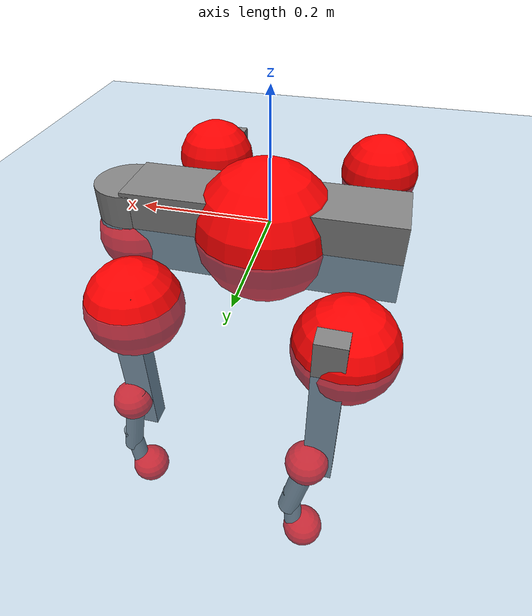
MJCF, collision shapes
<mujoco model="go2">
  <compiler angle="radian" assetdir="assets" balanceinertia="true" inertiafromgeom="false"/>

  <option timestep="0.005" density="1.2" viscosity="2e-05"/>

  <size nkey="1"/>

  <visual>
    <quality shadowsize="8192"/>
    <map shadowclip="0.5"/>
  </visual>

  <default>
    <default class="/">
      <geom contype="0" conaffinity="0" group="1" solref="-1000 -80"/>
      <site size="0.01 0.005 0.005" group="5"/>
      <general forcelimited="true" biastype="affine" gainprm="20" biasprm="0 -20 -0.5"/>
      <default class="go2">
        <joint armature="0.01" damping="0.01" frictionloss="0.2"/>
        <geom condim="1" margin="0.001"/>
        <default class="visual">
          <geom type="mesh" group="2"/>
        </default>
        <default class="collision">
          <geom group="3"/>
          <default class="foot">
            <geom size="0.022 0 0" condim="6" priority="1" friction="0.8 0.02 0.01" solimp="0.015 1 0.022"/>
          </default>
        </default>
        <default class="reward_collision_sphere">
          <geom group="5" rgba="1 0 0 1"/>
        </default>
      </default>
    </default>
  </default>

  <asset>
    <texture type="skybox" colorspace="auto" name="//unnamed_texture_0" builtin="gradient" rgb1="0.95 0.95 0.95" rgb2="0.95 0.95 0.95" width="100" height="600"/>
    <texture type="2d" colorspace="auto" name="texplane" builtin="checker" rgb1="0.345 0.575 0.748" rgb2="0.345 0.575 0.748" markrgb="1 1 1" width="512" height="512"/>
    <material name="MatPlane" class="/" texture="texplane" texuniform="true" texrepeat="2 2" specular="0.9"/>
    <material name="metal" class="/" rgba="0.9 0.95 0.95 1"/>
    <material name="black" class="/" rgba="0 0 0 1"/>
    <material name="white" class="/"/>
    <material name="gray" class="/" rgba="0.671705 0.692426 0.77427 1"/>
    <mesh name="base_0" class="/" file="base_0.obj"/>
    <mesh name="base_1" class="/" file="base_1.obj"/>
    <mesh name="base_2" class="/" file="base_2.obj"/>
    <mesh name="base_3" class="/" file="base_3.obj"/>
    <mesh name="base_4" class="/" file="base_4.obj"/>
    <mesh name="hip_0" class="/" file="hip_0.obj"/>
    <mesh name="hip_1" class="/" file="hip_1.obj"/>
    <mesh name="thigh_0" class="/" file="thigh_0.obj"/>
    <mesh name="thigh_1" class="/" file="thigh_1.obj"/>
    <mesh name="thigh_mirror_0" class="/" file="thigh_mirror_0.obj"/>
    <mesh name="thigh_mirror_1" class="/" file="thigh_mirror_1.obj"/>
    <mesh name="calf_0" class="/" file="calf_0.obj"/>
    <mesh name="calf_1" class="/" file="calf_1.obj"/>
    <mesh name="calf_mirror_0" class="/" file="calf_mirror_0.obj"/>
    <mesh name="calf_mirror_1" class="/" file="calf_mirror_1.obj"/>
    <mesh name="foot" class="/" file="foot.obj"/>
  </asset>

  <worldbody>
    <geom name="floor" class="/" size="100 100 0.125" type="plane" group="0" material="MatPlane"/>
    <light name="toplight_shadow" class="/" pos="0 0 5" dir="0.0990148 0.0990148 -0.990148" type="directional" ambient="0.04 0.04 0.04" diffuse="0.55 0.55 0.55" specular="0.12 0.12 0.12"/>
    <light name="toplight_fill" class="/" pos="0 0 5" dir="0.0990148 0.0990148 -0.990148" type="directional" castshadow="false" ambient="0.04 0.04 0.04" diffuse="0.3 0.3 0.3" specular="0.08 0.08 0.08"/>
    <body name="trunk" childclass="go2" pos="0.00239323 0.0149007 -0.00520709" quat="1 0.000217401 0.000171701 -5.34985e-05">
      <inertial pos="0.00653941 0.0156546 0.00023497" quat="0.0414433 0.668948 -0.0678712 0.739043" mass="8.53956" diaginertia="0.0236424 2.11089 0.00434745"/>
      <joint name="//unnamed_joint_0" type="free" armature="0" damping="0" frictionloss="0"/>
      <geom name="//unnamed_geom_1" class="visual" material="black" mesh="base_0"/>
      <geom name="//unnamed_geom_2" class="visual" material="black" mesh="base_1"/>
      <geom name="//unnamed_geom_3" class="visual" material="black" mesh="base_2"/>
      <geom name="//unnamed_geom_4" class="visual" material="white" mesh="base_3"/>
      <geom name="//unnamed_geom_5" class="visual" material="gray" mesh="base_4"/>
      <geom name="trunk_1" class="collision" size="0.201439 0.0500651 0.061042" type="box"/>
      <geom name="trunk_2" class="collision" size="0.0535456 0.048191" pos="0.206099 0 0.00709937" type="cylinder"/>
      <geom name="trunk_3" class="collision" size="0.0503329" pos="0.211885 0 -0.0425962"/>
      <geom name="//unnamed_geom_9" class="reward_collision_sphere" size="0.107091"/>
      <geom name="//unnamed_geom_10" class="reward_collision_sphere" size="0.0642547" pos="0.202484 0 -0.0319472"/>
      <site name="imu" pos="-0.0913082 -0.0608745 0.104467" size="0.0107091"/>
      <camera name="track" pos="0 -3.55929 0" quat="0.707107 0.707107 0 0" mode="trackcom"/>
      <camera name="ego_camera" pos="0.225625 0 0.0319472" quat="-0.5 -0.5 0.5 0.5"/>
      <body name="FL_hip" pos="0.126523 0.063632 -0.0168397" quat="0.999971 -0.00066829 0.00762426 -0.000531593">
        <inertial pos="0.00244189 0.0047094 -0.0114267" quat="0.486801 0.520483 0.507695 0.484116" mass="1.03156" diaginertia="0.000169256 0.0115309 8.18546e-05"/>
        <joint name="FL_hip_joint" pos="0 0 0" axis="0.999999 -0.00141729 -0.000728076" range="-1.436 0.812614" armature="0.013794" damping="0.0841028" frictionloss="0.0698842"/>
        <geom name="//unnamed_geom_11" class="visual" material="metal" mesh="hip_0"/>
        <geom name="//unnamed_geom_12" class="visual" material="gray" mesh="hip_1"/>
        <geom name="//unnamed_geom_13" class="collision" size="0.049262 0.0214182" pos="0 0.142371 0" quat="0.707107 0.707107 0 0" type="cylinder"/>
        <geom name="//unnamed_geom_14" class="reward_collision_sphere" size="0.0642547" pos="0 0.124575 0"/>
        <body name="FL_thigh" pos="-0.00258 0.150745 0.00714203" quat="0.999976 0.00537425 -0.00102323 -0.00434491">
          <inertial pos="-0.01667 -0.0523202 -0.0295876" quat="0.85958 0.0972138 -0.0707918 0.496649" mass="1.40756" diaginertia="0.00103796 0.0966351 0.000166261"/>
          <joint name="FL_thigh_joint" pos="0 0 0" axis="0.0735976 0.997129 -0.017824" range="-1.79163 3.13974" armature="0.0023621" damping="0" frictionloss="0.110074"/>
          <geom name="//unnamed_geom_15" class="visual" material="metal" mesh="thigh_0"/>
          <geom name="//unnamed_geom_16" class="visual" material="gray" mesh="thigh_1"/>
          <geom name="//unnamed_geom_17" class="collision" size="0.114052 0.0131187 0.0182055" pos="0 0 -0.0756083" quat="0.707107 0 0.707107 0" type="box"/>
          <body name="FL_calf" pos="0.00896358 0.0173906 -0.141501" quat="0.999983 -0.00397222 0.00398132 0.00165754">
            <inertial pos="-0.0086447 -0.00199582 -0.0817025" quat="0.710195 0.0040002 -0.0159376 0.703813" mass="0.308307" diaginertia="0.000337944 0.0196421 1.14033e-05"/>
            <joint name="FL_calf_joint" pos="0 0 0" axis="0.0119398 0.999868 -0.0110056" range="-2.35376 -0.895076" armature="0.0172033" damping="0.0249699" frictionloss="0.233158"/>
            <geom name="//unnamed_geom_18" class="visual" material="gray" mesh="calf_0"/>
            <geom name="//unnamed_geom_19" class="visual" material="black" mesh="calf_1"/>
            <geom name="FL_calf0" class="collision" size="0.0128509 0.0642547" pos="0.00578525 0 -0.0425962" quat="0.994493 0 -0.104807 0" type="cylinder"/>
            <geom name="//unnamed_geom_21" class="collision" size="0.01178 0.0348046" pos="0.0144631 0 -0.105071" quat="0.999688 0 0.0249974 0" type="cylinder"/>
            <geom name="//unnamed_geom_22" class="visual" pos="0 0 -0.151217" quat="1 0 0 0" material="black" mesh="foot"/>
            <geom name="FL_foot" class="foot" size="0.0253567" pos="-0.00144631 0 -0.151217"/>
            <geom name="//unnamed_geom_24" class="reward_collision_sphere" size="0.0267728"/>
            <geom name="//unnamed_geom_25" class="reward_collision_sphere" size="0.0267728" pos="-0.00144631 0 -0.151217"/>
            <site name="FL_foot" class="foot" pos="-0.00144631 0 -0.151217" size="0.0107091"/>
          </body>
        </body>
      </body>
      <body name="FR_hip" pos="0.136927 -0.0716919 0.0103481" quat="1 6.9615e-05 7.84488e-05 -0.000123228">
        <inertial pos="0.00567797 -0.0110148 -0.00781628" quat="0.486879 0.524214 0.496517 0.491548" mass="0.940096" diaginertia="0.000181727 0.012397 6.56021e-05"/>
        <joint name="FR_hip_joint" pos="0 0 0" axis="0.997799 0.0598841 -0.0284963" stiffness="0.0464012" range="-1.00061 1.12374" armature="0.00658306" damping="0" frictionloss="0.113497"/>
        <geom name="//unnamed_geom_26" class="visual" pos="0 9.31883e-09 3.99704e-07" quat="4.63268e-05 1 0 0" material="metal" mesh="hip_0"/>
        <geom name="//unnamed_geom_27" class="visual" pos="0 1.51069e-08 -9.88621e-07" quat="4.63268e-05 1 0 0" material="gray" mesh="hip_1"/>
        <geom name="//unnamed_geom_28" class="collision" size="0.049262 0.0214182" pos="0 -0.142371 0" quat="0.707107 0.707107 0 0" type="cylinder"/>
        <geom name="//unnamed_geom_29" class="reward_collision_sphere" size="0.0642547" pos="0 -0.124575 0"/>
        <body name="FR_thigh" pos="-0.0173765 -0.188887 -0.0122426" quat="0.999984 -0.00278683 -0.00285407 -0.00396716">
          <inertial pos="0.00857995 0.0586656 -0.0186362" quat="0.567207 -0.05054 0.0324847 0.821381" mass="0.937984" diaginertia="0.000886351 0.0838785 0.000143078"/>
          <joint name="FR_thigh_joint" pos="0 0 0" axis="0.000469721 -1 0.000293242" stiffness="0.0478666" range="-3.13586 1.60744" armature="0.00781634" damping="0" frictionloss="0.20958"/>
          <geom name="//unnamed_geom_30" class="visual" material="metal" mesh="thigh_mirror_0"/>
          <geom name="//unnamed_geom_31" class="visual" material="gray" mesh="thigh_mirror_1"/>
          <geom name="//unnamed_geom_32" class="collision" size="0.114052 0.0131187 0.0182055" pos="0 0 -0.0756083" quat="0.707107 0 0.707107 0" type="box"/>
          <body name="FR_calf" pos="0.01795 -0.00476471 -0.138501" quat="0.999967 0.00102357 0.003657 -0.00718305">
            <inertial pos="-0.00518116 -0.000916646 -0.11409" quat="0.68004 0.0458694 0.0251818 0.731305" mass="0.274444" diaginertia="0.000264045 0.0252038 8.4213e-06"/>
            <joint name="FR_calf_joint" pos="0 0 0" axis="-0.0370355 -0.995573 -0.0863819" stiffness="0.0516714" range="0.711354 2.67219" armature="0.00210665" damping="0" frictionloss="0.386733"/>
            <geom name="//unnamed_geom_33" class="visual" material="gray" mesh="calf_mirror_0"/>
            <geom name="//unnamed_geom_34" class="visual" material="black" mesh="calf_mirror_1"/>
            <geom name="FR_calf0" class="collision" size="0.0139219 0.0642547" pos="0.00723156 0 -0.0425962" quat="0.995004 0 -0.0998334 0" type="cylinder"/>
            <geom name="//unnamed_geom_36" class="collision" size="0.01178 0.0348046" pos="0.0144631 0 -0.105071" quat="0.999688 0 0.0249974 0" type="cylinder"/>
            <geom name="//unnamed_geom_37" class="visual" pos="0 0 -0.151217" quat="1 0 0 0" material="black" mesh="foot"/>
            <geom name="FR_foot" class="foot" size="0.0316843" pos="-0.00144631 0 -0.151217"/>
            <geom name="//unnamed_geom_39" class="reward_collision_sphere" size="0.0267728"/>
            <geom name="//unnamed_geom_40" class="reward_collision_sphere" size="0.0267728" pos="-0.00144631 0 -0.151217"/>
            <site name="FR_foot" class="foot" pos="-0.00144631 0 -0.151217" size="0.0107091"/>
          </body>
        </body>
      </body>
      <body name="RL_hip" pos="-0.145274 0.0887458 -0.00506967" quat="0.999989 0.0009269 -0.00423501 -0.0016931">
        <inertial pos="0.00127332 0.0190689 -0.0119674" quat="0.498179 0.493276 0.531516 0.475381" mass="0.646939" diaginertia="0.000148355 0.00930958 7.78151e-05"/>
        <joint name="RL_hip_joint" pos="0 0 0" axis="-0.99915 -0.0400644 -0.00970854" stiffness="0.0396608" range="-1.20019 1.25202" armature="0.00906868" damping="0" frictionloss="0.138399"/>
        <geom name="//unnamed_geom_41" class="visual" pos="-1.15153e-10 0 -2.25725e-08" quat="4.63268e-05 0 1 0" material="metal" mesh="hip_0"/>
        <geom name="//unnamed_geom_42" class="visual" pos="-1.86676e-10 0 -2.00186e-08" quat="4.63268e-05 0 1 0" material="gray" mesh="hip_1"/>
        <geom name="//unnamed_geom_43" class="collision" size="0.049262 0.0214182" pos="0 0.142371 0" quat="0.707107 0.707107 0 0" type="cylinder"/>
        <geom name="//unnamed_geom_44" class="reward_collision_sphere" size="0.0642547" pos="0 0.124575 0"/>
        <body name="RL_thigh" pos="0.0128413 0.170576 0.0177893" quat="0.999993 0.00118352 0.00275595 -0.00219322">
          <inertial pos="-0.00503535 -0.0343965 -0.00528496" quat="0.862206 0.071042 -0.0205588 0.501129" mass="0.942724" diaginertia="0.00113934 0.0797883 0.000148324"/>
          <joint name="RL_thigh_joint" pos="0 0 0" axis="-0.00751013 0.999958 -0.00518687" stiffness="0.023439" range="-0.226993 4.28089" armature="0.0154931" damping="0.0896288" frictionloss="0.27097"/>
          <geom name="//unnamed_geom_45" class="visual" material="metal" mesh="thigh_0"/>
          <geom name="//unnamed_geom_46" class="visual" material="gray" mesh="thigh_1"/>
          <geom name="//unnamed_geom_47" class="collision" size="0.114052 0.0131187 0.0182055" pos="0 0 -0.0756083" quat="0.707107 0 0.707107 0" type="box"/>
          <body name="RL_calf" pos="0.0124912 0.0192085 -0.157956" quat="0.999992 0.00266873 0.00281637 -0.000516359">
            <inertial pos="0.00972945 -0.00338454 -0.0942646" quat="0.707966 -0.0193591 0.00146591 0.70598" mass="0.209939" diaginertia="0.00019737 0.0232296 7.90738e-06"/>
            <joint name="RL_calf_joint" pos="0 0 0" axis="-0.0180863 0.997715 -0.0650916" range="-3.09888 -0.544194" armature="0.00902044" damping="0.0593854" frictionloss="0.24934"/>
            <geom name="//unnamed_geom_48" class="visual" material="gray" mesh="calf_0"/>
            <geom name="//unnamed_geom_49" class="visual" material="black" mesh="calf_1"/>
            <geom name="RL_calf0" class="collision" size="0.0139219 0.0642547" pos="0.00723156 0 -0.0425962" quat="0.995004 0 -0.0998334 0" type="cylinder"/>
            <geom name="//unnamed_geom_51" class="collision" size="0.01178 0.0348046" pos="0.0144631 0 -0.105071" quat="0.999688 0 0.0249974 0" type="cylinder"/>
            <geom name="//unnamed_geom_52" class="visual" pos="0 0 -0.151217" quat="1 0 0 0" material="black" mesh="foot"/>
            <geom name="RL_foot" class="foot" size="0.0149229" pos="-0.00144631 0 -0.151217"/>
            <geom name="//unnamed_geom_54" class="reward_collision_sphere" size="0.0267728"/>
            <geom name="//unnamed_geom_55" class="reward_collision_sphere" size="0.0267728" pos="-0.00144631 0 -0.151217"/>
            <site name="RL_foot" class="foot" pos="-0.00144631 0 -0.151217" size="0.0107091"/>
          </body>
        </body>
      </body>
      <body name="RR_hip" pos="-0.148778 -0.0768756 0.00818531" quat="0.999967 -0.00612776 0.00387685 -0.00361848">
        <inertial pos="-0.00431023 -0.0194906 0.0132212" quat="0.472394 0.512659 0.519733 0.493865" mass="0.668102" diaginertia="0.000121039 0.00791458 5.736e-05"/>
        <joint name="RR_hip_joint" pos="0 0 0" axis="-0.996569 0.0827539 -0.00145303" range="-0.928758 1.39388" armature="0.0115465" damping="0.0517587" frictionloss="0.154862"/>
        <geom name="//unnamed_geom_56" class="visual" pos="1.51729e-10 9.31883e-09 -4.22276e-07" quat="2.14617e-09 4.63268e-05 4.63268e-05 -1" material="metal" mesh="hip_0"/>
        <geom name="//unnamed_geom_57" class="visual" pos="9.62085e-11 1.51069e-08 9.68602e-07" quat="2.14617e-09 4.63268e-05 4.63268e-05 -1" material="gray" mesh="hip_1"/>
        <geom name="//unnamed_geom_58" class="collision" size="0.049262 0.0214182" pos="0 -0.142371 0" quat="0.707107 0.707107 0 0" type="cylinder"/>
        <geom name="//unnamed_geom_59" class="reward_collision_sphere" size="0.0642547" pos="0 -0.124575 0"/>
        <body name="RR_thigh" pos="-0.002959 -0.183893 -0.0100372" quat="0.999964 0.000192584 0.000596885 0.00842818">
          <inertial pos="-0.00403946 0.0567568 -0.0357022" quat="0.536096 -0.0520546 0.0929298 0.83741" mass="1.54955" diaginertia="0.00127441 0.114835 0.000182323"/>
          <joint name="RR_thigh_joint" pos="0 0 0" axis="-0.0749676 -0.996123 -0.0460365" stiffness="0.04828" range="-4.66967 0.282651" armature="0.0127899" damping="0" frictionloss="0.140934"/>
          <geom name="//unnamed_geom_60" class="visual" material="metal" mesh="thigh_mirror_0"/>
          <geom name="//unnamed_geom_61" class="visual" material="gray" mesh="thigh_mirror_1"/>
          <geom name="//unnamed_geom_62" class="collision" size="0.114052 0.0131187 0.0182055" pos="0 0 -0.0756083" quat="0.707107 0 0.707107 0" type="box"/>
          <body name="RR_calf" pos="0.0199504 -0.00774624 -0.157926" quat="0.999985 0.00319809 -0.00159007 0.00412591">
            <inertial pos="-0.0149257 0.00170216 -0.0918687" quat="0.726122 -0.00470087 -0.0350009 0.686658" mass="0.301643" diaginertia="0.000222408 0.027829 8.38015e-06"/>
            <joint name="RR_calf_joint" pos="0 0 0" axis="-0.0535911 -0.996083 0.0703326" stiffness="0.0576074" range="1.15716 2.37268" armature="0.0195864" damping="0.0184019" frictionloss="0.182109"/>
            <geom name="//unnamed_geom_63" class="visual" material="gray" mesh="calf_mirror_0"/>
            <geom name="//unnamed_geom_64" class="visual" material="black" mesh="calf_mirror_1"/>
            <geom name="RR_calf0" class="collision" size="0.0139219 0.0642547" pos="0.00723156 0 -0.0425962" quat="0.995004 0 -0.0998334 0" type="cylinder"/>
            <geom name="//unnamed_geom_66" class="collision" size="0.01178 0.0348046" pos="0.0144631 0 -0.105071" quat="0.999688 0 0.0249974 0" type="cylinder"/>
            <geom name="//unnamed_geom_67" class="visual" pos="0 0 -0.151217" quat="1 0 0 0" material="black" mesh="foot"/>
            <geom name="RR_foot" class="foot" size="0.034293" pos="-0.00144631 0 -0.151217"/>
            <geom name="//unnamed_geom_69" class="reward_collision_sphere" size="0.0267728"/>
            <geom name="//unnamed_geom_70" class="reward_collision_sphere" size="0.0267728" pos="-0.00144631 0 -0.151217"/>
            <site name="RR_foot" class="foot" pos="-0.00144631 0 -0.151217" size="0.0107091"/>
          </body>
        </body>
      </body>
    </body>
  </worldbody>

  <contact>
    <pair class="/" geom1="floor" geom2="FL_foot" name="//unnamed_contact_0"/>
    <pair class="/" geom1="floor" geom2="FR_foot" name="//unnamed_contact_1"/>
    <pair class="/" geom1="floor" geom2="RL_foot" name="//unnamed_contact_2"/>
    <pair class="/" geom1="floor" geom2="RR_foot" name="//unnamed_contact_3"/>
  </contact>

  <actuator>
    <general name="FL_hip" class="/" joint="FL_hip_joint" forcerange="-6.99892 6.99892" gainprm="11.9812" biasprm="0 -11.9812 -0.405391"/>
    <general name="FL_thigh" class="/" joint="FL_thigh_joint" forcerange="-38.2646 38.2646" gainprm="11.9812" biasprm="0 -11.9812 -0.405391"/>
    <general name="FL_calf" class="/" joint="FL_calf_joint" forcerange="-64.6869 64.6869" gainprm="11.9812" biasprm="0 -11.9812 -0.405391"/>
    <general name="FR_hip" class="/" joint="FR_hip_joint" forcerange="-8.59524 8.59524" gainprm="11.9812" biasprm="0 -11.9812 -0.405391"/>
    <general name="FR_thigh" class="/" joint="FR_thigh_joint" forcerange="-8.56163 8.56163" gainprm="11.9812" biasprm="0 -11.9812 -0.405391"/>
    <general name="FR_calf" class="/" joint="FR_calf_joint" forcerange="-24.3149 24.3149" gainprm="11.9812" biasprm="0 -11.9812 -0.405391"/>
    <general name="RL_hip" class="/" joint="RL_hip_joint" forcerange="-32.7021 32.7021" gainprm="11.9812" biasprm="0 -11.9812 -0.405391"/>
    <general name="RL_thigh" class="/" joint="RL_thigh_joint" forcerange="-19.7957 19.7957" gainprm="11.9812" biasprm="0 -11.9812 -0.405391"/>
    <general name="RL_calf" class="/" joint="RL_calf_joint" forcerange="-71.3012 71.3012" gainprm="11.9812" biasprm="0 -11.9812 -0.405391"/>
    <general name="RR_hip" class="/" joint="RR_hip_joint" forcerange="-42.9306 42.9306" gainprm="11.9812" biasprm="0 -11.9812 -0.405391"/>
    <general name="RR_thigh" class="/" joint="RR_thigh_joint" forcerange="-31.1558 31.1558" gainprm="11.9812" biasprm="0 -11.9812 -0.405391"/>
    <general name="RR_calf" class="/" joint="RR_calf_joint" forcerange="-46.677 46.677" gainprm="11.9812" biasprm="0 -11.9812 -0.405391"/>
  </actuator>

  <sensor>
    <gyro site="imu" name="imu_angular_velocity"/>
    <velocimeter site="imu" name="imu_linear_velocity"/>
    <framelinvel objtype="site" objname="FL_foot" name="FL_foot_global_linear_velocity"/>
    <framelinvel objtype="site" objname="FR_foot" name="FR_foot_global_linear_velocity"/>
    <framelinvel objtype="site" objname="RL_foot" name="RL_foot_global_linear_velocity"/>
    <framelinvel objtype="site" objname="RR_foot" name="RR_foot_global_linear_velocity"/>
  </sensor>

  <keyframe>
    <key name="home" qpos="0 0 0.325 1 0 0 0 0.1 0.8 -1.5 -0.1 -0.8 1.5 -0.1 0.8 -1.5 0.1 -0.8 1.5"/>
  </keyframe>
</mujoco>
